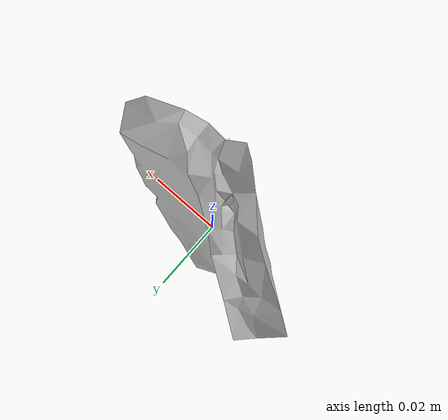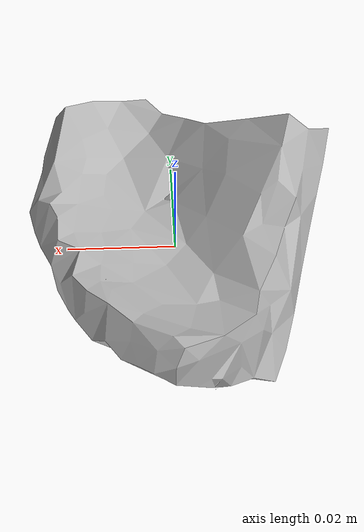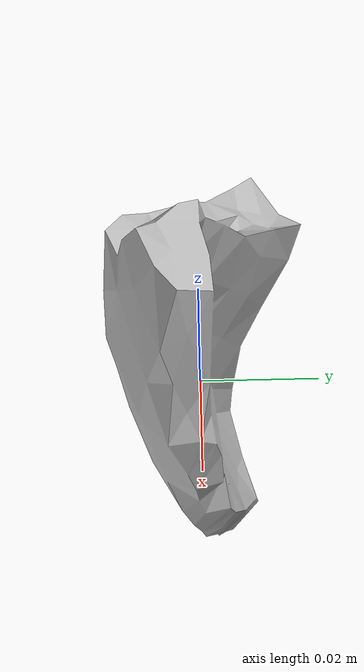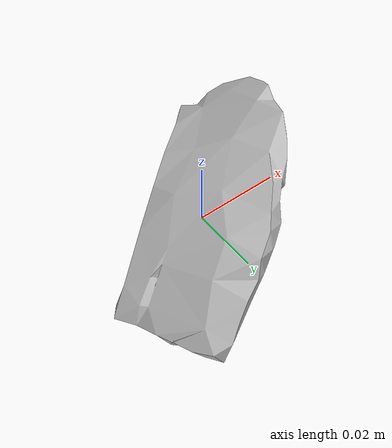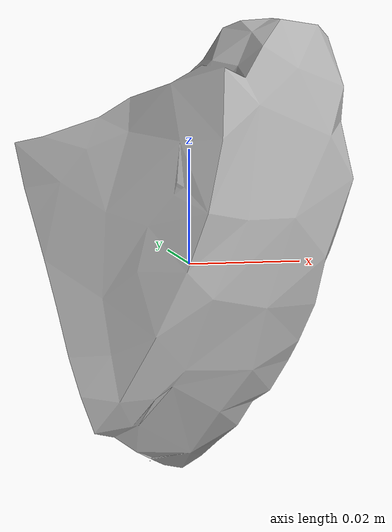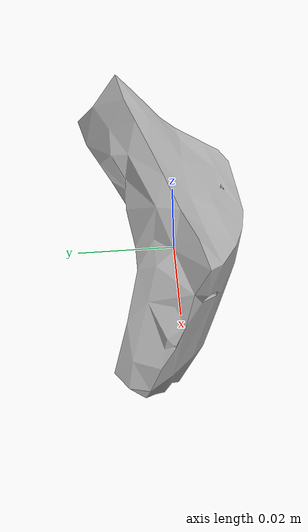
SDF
<?xml version="1.0" ?>
<sdf version="1.5">

  <model name='sherd_a'>
    <pose frame=''>0 0 0 0 0 0</pose>
    <static>false</static> <!-- mass is ignored for static models -->
    <link name='sherd_a_link'>
      <pose frame=''>0 0 0.005 0 0 0</pose>
      <inertial>
        <mass>0.162</mass>
        <inertia>
          <ixx>5.564637e-05</ixx>
          <ixy>4.5782365e-06</ixy>
          <ixz>-8.304574e-06</ixz>
          <iyy>7.6009186e-05</iyy>
          <iyz>2.6780175000000004e-06</iyz>
          <izz>2.9795393e-05</izz>
        </inertia>
      </inertial>
      <collision name='collision'> <!-- .dae mesh for collision falls through the blue mat; .stl avoids this -->
        <geometry>
          <mesh>
            <uri>model://sherd_a/meshes/sherd_a.stl</uri>
            <scale>1 1 1</scale>
          </mesh>
        </geometry>
        <surface>
          <contact>
            <poissons_ratio>0.15</poissons_ratio>
            <elastic_modulus>8e+10</elastic_modulus>
            <ode>
              <kp>100000</kp>
              <kd>100</kd>
              <max_vel>100</max_vel>
              <min_depth>0.001</min_depth>
            </ode>
          </contact>
          <friction>
            <torsional>
              <coefficient>1</coefficient>
            </torsional>
            <ode>
              <mu>1.0</mu>
              <mu2>1.0</mu2>
              <fdir1>1 0 0</fdir1> <!-- specify in x dir to prevent slipping on mat AND in gripper. Gazebo automatically picks fdir2 as vector normal to applied force on surface -->
            </ode>
          </friction>
          <bounce/>
        </surface>
        <max_contacts>10</max_contacts>
      </collision>
      <visual name='visual'>
        <geometry>
          <mesh>
            <uri>model://sherd_a/meshes/sherd_a.stl</uri>
            <scale>1 1 1</scale>
          </mesh>
        </geometry>
        <material>
          <script>
            <uri>model://sherd_a/materials/scripts</uri>
            <uri>model://sherd_a/materials/textures</uri>
            <name>sherdMat/a</name>
          </script>
        </material>
      </visual>
      <self_collide>0</self_collide>
      <kinematic>0</kinematic>
      <gravity>1</gravity>
    </link>
  </model>
</sdf>
